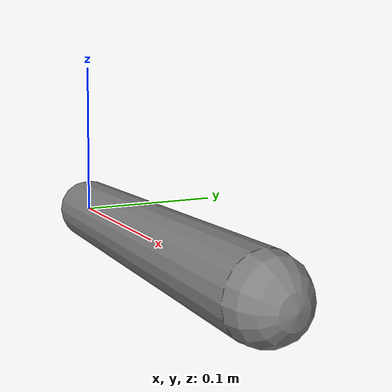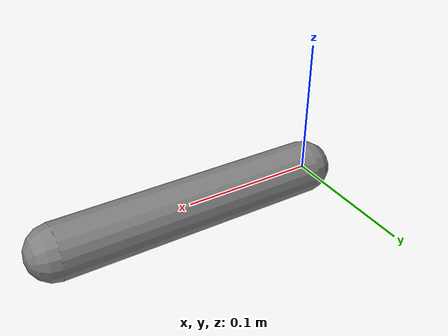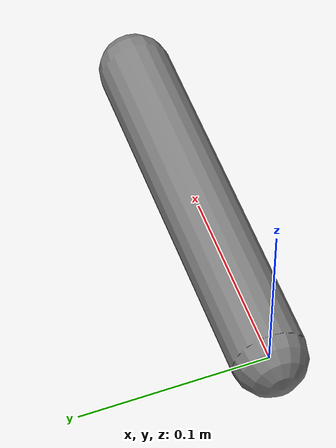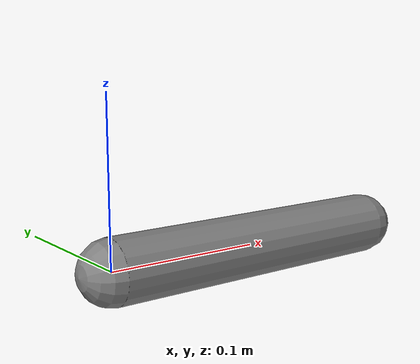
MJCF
<mujoco model="revolute_frictionloss">
  <worldbody>
    <body name="arm" pos="0 0 0">
      <joint type="hinge" axis="0 1 0" frictionloss="0.5"/>
      <inertial mass="0.5" pos="0.1 0 0" diaginertia="0.01 0.01 0.01"/>
      <geom type="capsule" fromto="0 0 0 0.2 0 0" size="0.02" contype="0" conaffinity="0"/>
    </body>
  </worldbody>
</mujoco>
